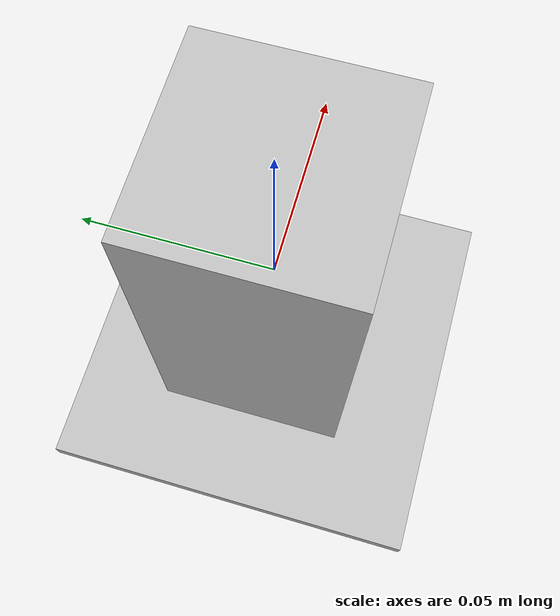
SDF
<?xml version="1.0" ?>
<sdf version="1.4">
  <model name="aruco_cube">
    <static>0</static>
    <link name="link">

      <!-- Cuboid base collision -->
      <collision name="base_collision">
        <pose>0 0 -0.05 0 0 0</pose> <!-- Adjust the pose to place it below the existing model -->
        <geometry>
          <box>
            <size>0.1 0.1 0.005</size> <!-- Dimensions of the cuboid base -->
          </box>
        </geometry>
      </collision>

      <!-- Cuboid base visual -->
      <visual name="base_visual">
        <pose>0 0 -0.05 0 0 0</pose> <!-- Adjust the pose to place it below the existing model -->
        <geometry>
          <box>
            <size>0.1 0.1 0.005</size> <!-- Dimensions of the cuboid base -->
          </box>
        </geometry>
        <material>
          <!-- Define material properties for the base if needed -->
        </material>
      </visual>

      <inertial>
        <mass>0.005</mass>
        <inertia>
          <ixx>0.000052083</ixx>
          <ixy>0.0</ixy>
          <ixz>0.0</ixz>
          <iyy>0.000052083</iyy>
          <iyz>0.0</iyz>
          <izz>0.000020833</izz>
        </inertia>
      </inertial>

      <collision name="colision">
        <pose>0 0 0 0 0 0</pose>
          <geometry>
            <box>
              <size>0.05 0.05 0.1</size>
            </box>
          </geometry>
        <surface>
          <friction>
            <ode>
              <mu>30.0</mu>
              <mu2>30.0</mu2>
              <fdir1>0 0 0</fdir1>
            </ode>
          </friction>
          <contact>
            <ode>
              <kp>1000000.0</kp>
              <kd>100.0</kd>
              <min_depth>0.0025</min_depth>
              <max_vel>1.0</max_vel>
            </ode>
          </contact>
        </surface>
      </collision>

      <visual name="visual1">
        <pose>0 0 0 0 0 0</pose>
        <geometry>
          <mesh>
            <uri>model://aruco_cube/meshes/aruco_cube_5cm.dae</uri>
	    <scale> 1 1 2 </scale>
          </mesh>
        </geometry>
      </visual>

      <velocity_decay>
        <linear>0.000000</linear>
        <angular>0.000000</angular>
      </velocity_decay>
      <self_collide>0</self_collide>
      <kinematic>0</kinematic>
      <gravity>1</gravity>
    </link>
  </model>
</sdf>
